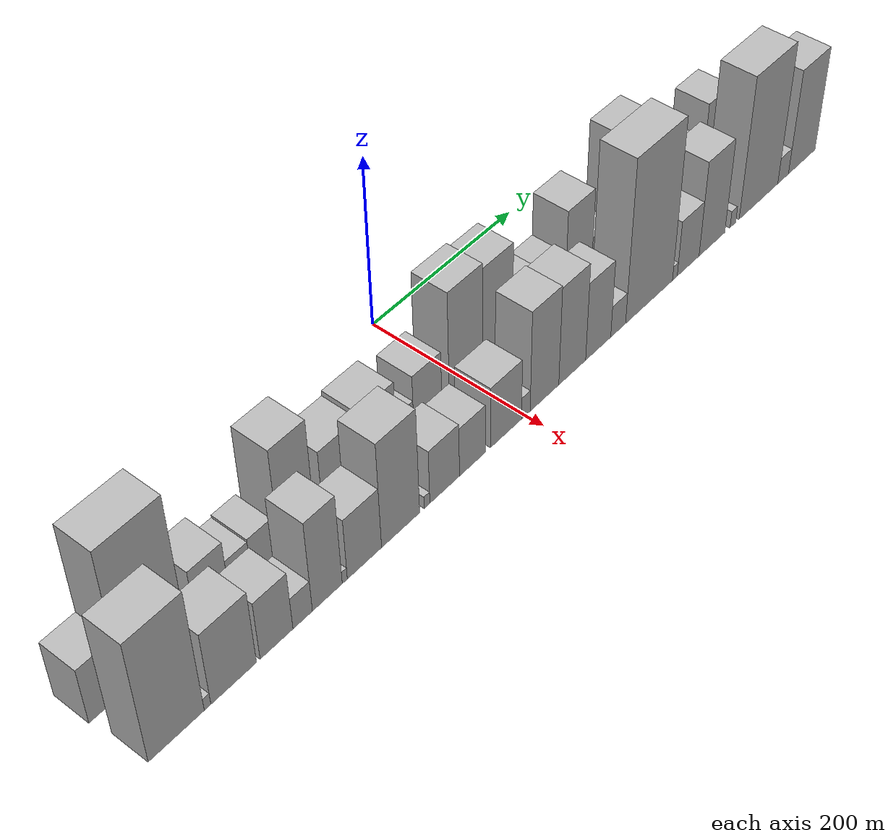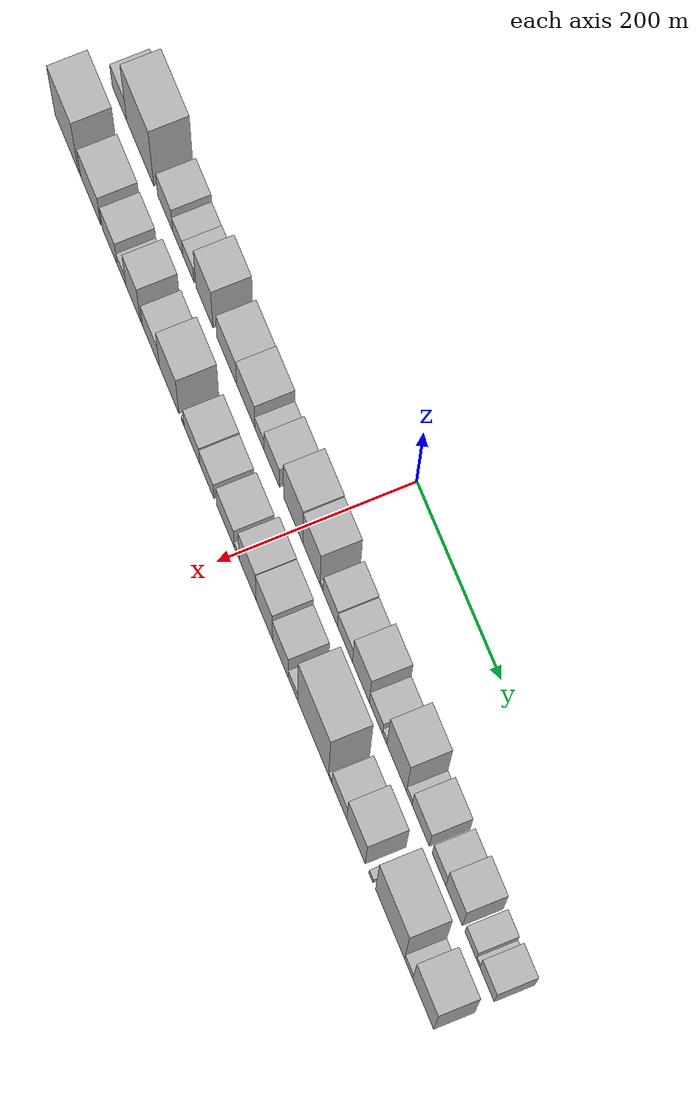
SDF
<sdf version="1.6">
 <world name="default">
  <scene>
   <sky><clouds><speed>12</speed></clouds></sky>
   <ambient>0.4 0.4 0.4 1</ambient>
   <background>0.7 0.7 0.7 1</background>
   <shadows>1</shadows>
  </scene>
  <gravity>0 0 -9.8066</gravity>
  <magnetic_field>6e-06 2.3e-05 -4.2e-05</magnetic_field>
  <physics default="0" name="default_physics" type="ode">
   <ode>
    <solver>
     <type>quick</type>
     <iters>10</iters>
     <sor>1.0</sor>
     <use_dynamic_moi_rescaling>0</use_dynamic_moi_rescaling>
    </solver>
    <constraints>
     <cfm>0</cfm>
     <erp>0.2</erp>
     <contact_max_correcting_vel>100</contact_max_correcting_vel>
     <contact_surface_layer>0.001</contact_surface_layer>
    </constraints>
   </ode>
   <max_step_size>0.004</max_step_size>
   <real_time_factor>1</real_time_factor>
   <real_time_update_rate>250</real_time_update_rate>
  </physics>
  <light name="sun" type="directional">
   <pose>0 0 10 0 0 0</pose>
   <diffuse>0.8 0.8 0.8 1</diffuse>
   <specular>0.2 0.2 0.2 1</specular>
   <attenuation>
    <range>1000</range>
    <constant>0.9</constant>
    <linear>0.01</linear>
    <quadratic>0.001</quadratic>
   </attenuation>
   <direction>-0.5 0.1 -0.9</direction>
  </light>
  <model name="building_1">
   <static>1</static>
   <pose>100.0000 -441.6893 0 0.000000 0.000000 0.000000</pose>
   <link name="link">
    <pose>0 0 34.50 0 0 0</pose>
    <collision name="collision"><geometry><box><size>40.0000 36.6214 69.0000</size></box></geometry></collision>
    <visual name="visual">
     <cast_shadows>0</cast_shadows>
     <geometry><box><size>40.0000 36.6214 69.0000</size></box></geometry>
     <material>
      <script>
       <uri>model://HANNAS_wall/materials/scripts</uri>
       <uri>model://HANNAS_wall/materials/textures</uri>
       <name>vrc/HANNAS_wall</name>
      </script>
     </material>
    </visual>
   </link>
  </model>
  <model name="building_2">
   <static>1</static>
   <pose>100.0000 -389.3046 0 0.000000 0.000000 0.000000</pose>
   <link name="link">
    <pose>0 0 87.00 0 0 0</pose>
    <collision name="collision"><geometry><box><size>40.0000 68.1482 174.0000</size></box></geometry></collision>
    <visual name="visual">
     <cast_shadows>0</cast_shadows>
     <geometry><box><size>40.0000 68.1482 174.0000</size></box></geometry>
     <material>
      <script>
       <uri>model://HANNAS_wall/materials/scripts</uri>
       <uri>model://HANNAS_wall/materials/textures</uri>
       <name>vrc/HANNAS_wall</name>
      </script>
     </material>
    </visual>
   </link>
  </model>
  <model name="building_3">
   <static>1</static>
   <pose>100.0000 -326.4216 0 0.000000 0.000000 0.000000</pose>
   <link name="link">
    <pose>0 0 36.00 0 0 0</pose>
    <collision name="collision"><geometry><box><size>40.0000 37.6178 72.0000</size></box></geometry></collision>
    <visual name="visual">
     <cast_shadows>0</cast_shadows>
     <geometry><box><size>40.0000 37.6178 72.0000</size></box></geometry>
     <material>
      <script>
       <uri>model://HANNAS_wall/materials/scripts</uri>
       <uri>model://HANNAS_wall/materials/textures</uri>
       <name>vrc/HANNAS_wall</name>
      </script>
     </material>
    </visual>
   </link>
  </model>
  <model name="building_4">
   <static>1</static>
   <pose>100.0000 -294.9473 0 0.000000 0.000000 0.000000</pose>
   <link name="link">
    <pose>0 0 24.00 0 0 0</pose>
    <collision name="collision"><geometry><box><size>40.0000 25.3308 48.0000</size></box></geometry></collision>
    <visual name="visual">
     <cast_shadows>0</cast_shadows>
     <geometry><box><size>40.0000 25.3308 48.0000</size></box></geometry>
     <material>
      <script>
       <uri>model://HANNAS_wall/materials/scripts</uri>
       <uri>model://HANNAS_wall/materials/textures</uri>
       <name>vrc/HANNAS_wall</name>
      </script>
     </material>
    </visual>
   </link>
  </model>
  <model name="building_5">
   <static>1</static>
   <pose>100.0000 -268.2786 0 0.000000 0.000000 0.000000</pose>
   <link name="link">
    <pose>0 0 25.50 0 0 0</pose>
    <collision name="collision"><geometry><box><size>40.0000 28.0067 51.0000</size></box></geometry></collision>
    <visual name="visual">
     <cast_shadows>0</cast_shadows>
     <geometry><box><size>40.0000 28.0067 51.0000</size></box></geometry>
     <material>
      <script>
       <uri>model://HANNAS_wall/materials/scripts</uri>
       <uri>model://HANNAS_wall/materials/textures</uri>
       <name>vrc/HANNAS_wall</name>
      </script>
     </material>
    </visual>
   </link>
  </model>
  <model name="building_6">
   <static>1</static>
   <pose>100.0000 -228.2512 0 0.000000 0.000000 0.000000</pose>
   <link name="link">
    <pose>0 0 64.50 0 0 0</pose>
    <collision name="collision"><geometry><box><size>40.0000 42.0481 129.0000</size></box></geometry></collision>
    <visual name="visual">
     <cast_shadows>0</cast_shadows>
     <geometry><box><size>40.0000 42.0481 129.0000</size></box></geometry>
     <material>
      <script>
       <uri>model://HANNAS_wall/materials/scripts</uri>
       <uri>model://HANNAS_wall/materials/textures</uri>
       <name>vrc/HANNAS_wall</name>
      </script>
     </material>
    </visual>
   </link>
  </model>
  <model name="building_7">
   <static>1</static>
   <pose>100.0000 -172.9865 0 0.000000 0.000000 0.000000</pose>
   <link name="link">
    <pose>0 0 40.50 0 0 0</pose>
    <collision name="collision"><geometry><box><size>40.0000 48.4812 81.0000</size></box></geometry></collision>
    <visual name="visual">
     <cast_shadows>0</cast_shadows>
     <geometry><box><size>40.0000 48.4812 81.0000</size></box></geometry>
     <material>
      <script>
       <uri>model://HANNAS_wall/materials/scripts</uri>
       <uri>model://HANNAS_wall/materials/textures</uri>
       <name>vrc/HANNAS_wall</name>
      </script>
     </material>
    </visual>
   </link>
  </model>
  <model name="building_8">
   <static>1</static>
   <pose>100.0000 -126.2339 0 0.000000 0.000000 0.000000</pose>
   <link name="link">
    <pose>0 0 43.50 0 0 0</pose>
    <collision name="collision"><geometry><box><size>40.0000 45.0240 87.0000</size></box></geometry></collision>
    <visual name="visual">
     <cast_shadows>0</cast_shadows>
     <geometry><box><size>40.0000 45.0240 87.0000</size></box></geometry>
     <material>
      <script>
       <uri>model://HANNAS_wall/materials/scripts</uri>
       <uri>model://HANNAS_wall/materials/textures</uri>
       <name>vrc/HANNAS_wall</name>
      </script>
     </material>
    </visual>
   </link>
  </model>
  <model name="building_9">
   <static>1</static>
   <pose>100.0000 -92.3287 0 0.000000 0.000000 0.000000</pose>
   <link name="link">
    <pose>0 0 22.50 0 0 0</pose>
    <collision name="collision"><geometry><box><size>40.0000 22.7864 45.0000</size></box></geometry></collision>
    <visual name="visual">
     <cast_shadows>0</cast_shadows>
     <geometry><box><size>40.0000 22.7864 45.0000</size></box></geometry>
     <material>
      <script>
       <uri>model://HANNAS_wall/materials/scripts</uri>
       <uri>model://HANNAS_wall/materials/textures</uri>
       <name>vrc/HANNAS_wall</name>
      </script>
     </material>
    </visual>
   </link>
  </model>
  <model name="building_10">
   <static>1</static>
   <pose>100.0000 -62.1386 0 0.000000 0.000000 0.000000</pose>
   <link name="link">
    <pose>0 0 37.50 0 0 0</pose>
    <collision name="collision"><geometry><box><size>40.0000 37.5937 75.0000</size></box></geometry></collision>
    <visual name="visual">
     <cast_shadows>0</cast_shadows>
     <geometry><box><size>40.0000 37.5937 75.0000</size></box></geometry>
     <material>
      <script>
       <uri>model://HANNAS_wall/materials/scripts</uri>
       <uri>model://HANNAS_wall/materials/textures</uri>
       <name>vrc/HANNAS_wall</name>
      </script>
     </material>
    </visual>
   </link>
  </model>
  <model name="building_11">
   <static>1</static>
   <pose>100.0000 -10.0357 0 0.000000 0.000000 0.000000</pose>
   <link name="link">
    <pose>0 0 69.00 0 0 0</pose>
    <collision name="collision"><geometry><box><size>40.0000 46.6120 138.0000</size></box></geometry></collision>
    <visual name="visual">
     <cast_shadows>0</cast_shadows>
     <geometry><box><size>40.0000 46.6120 138.0000</size></box></geometry>
     <material>
      <script>
       <uri>model://HANNAS_wall/materials/scripts</uri>
       <uri>model://HANNAS_wall/materials/textures</uri>
       <name>vrc/HANNAS_wall</name>
      </script>
     </material>
    </visual>
   </link>
  </model>
  <model name="building_12">
   <static>1</static>
   <pose>100.0000 34.3279 0 0.000000 0.000000 0.000000</pose>
   <link name="link">
    <pose>0 0 66.00 0 0 0</pose>
    <collision name="collision"><geometry><box><size>40.0000 42.1152 132.0000</size></box></geometry></collision>
    <visual name="visual">
     <cast_shadows>0</cast_shadows>
     <geometry><box><size>40.0000 42.1152 132.0000</size></box></geometry>
     <material>
      <script>
       <uri>model://HANNAS_wall/materials/scripts</uri>
       <uri>model://HANNAS_wall/materials/textures</uri>
       <name>vrc/HANNAS_wall</name>
      </script>
     </material>
    </visual>
   </link>
  </model>
  <model name="building_13">
   <static>1</static>
   <pose>100.0000 59.0370 0 0.000000 0.000000 0.000000</pose>
   <link name="link">
    <pose>0 0 9.00 0 0 0</pose>
    <collision name="collision"><geometry><box><size>40.0000 7.3032 18.0000</size></box></geometry></collision>
    <visual name="visual">
     <cast_shadows>0</cast_shadows>
     <geometry><box><size>40.0000 7.3032 18.0000</size></box></geometry>
     <material>
      <script>
       <uri>model://HANNAS_wall/materials/scripts</uri>
       <uri>model://HANNAS_wall/materials/textures</uri>
       <name>vrc/HANNAS_wall</name>
      </script>
     </material>
    </visual>
   </link>
  </model>
  <model name="building_14">
   <static>1</static>
   <pose>100.0000 80.1584 0 0.000000 0.000000 0.000000</pose>
   <link name="link">
    <pose>0 0 34.50 0 0 0</pose>
    <collision name="collision"><geometry><box><size>40.0000 34.9397 69.0000</size></box></geometry></collision>
    <visual name="visual">
     <cast_shadows>0</cast_shadows>
     <geometry><box><size>40.0000 34.9397 69.0000</size></box></geometry>
     <material>
      <script>
       <uri>model://HANNAS_wall/materials/scripts</uri>
       <uri>model://HANNAS_wall/materials/textures</uri>
       <name>vrc/HANNAS_wall</name>
      </script>
     </material>
    </visual>
   </link>
  </model>
  <model name="building_15">
   <static>1</static>
   <pose>100.0000 115.6717 0 0.000000 0.000000 0.000000</pose>
   <link name="link">
    <pose>0 0 31.50 0 0 0</pose>
    <collision name="collision"><geometry><box><size>40.0000 36.0867 63.0000</size></box></geometry></collision>
    <visual name="visual">
     <cast_shadows>0</cast_shadows>
     <geometry><box><size>40.0000 36.0867 63.0000</size></box></geometry>
     <material>
      <script>
       <uri>model://HANNAS_wall/materials/scripts</uri>
       <uri>model://HANNAS_wall/materials/textures</uri>
       <name>vrc/HANNAS_wall</name>
      </script>
     </material>
    </visual>
   </link>
  </model>
  <model name="building_16">
   <static>1</static>
   <pose>100.0000 153.8716 0 0.000000 0.000000 0.000000</pose>
   <link name="link">
    <pose>0 0 57.00 0 0 0</pose>
    <collision name="collision"><geometry><box><size>40.0000 40.3131 114.0000</size></box></geometry></collision>
    <visual name="visual">
     <cast_shadows>0</cast_shadows>
     <geometry><box><size>40.0000 40.3131 114.0000</size></box></geometry>
     <material>
      <script>
       <uri>model://HANNAS_wall/materials/scripts</uri>
       <uri>model://HANNAS_wall/materials/textures</uri>
       <name>vrc/HANNAS_wall</name>
      </script>
     </material>
    </visual>
   </link>
  </model>
  <model name="building_17">
   <static>1</static>
   <pose>100.0000 189.6926 0 0.000000 0.000000 0.000000</pose>
   <link name="link">
    <pose>0 0 27.00 0 0 0</pose>
    <collision name="collision"><geometry><box><size>40.0000 31.3289 54.0000</size></box></geometry></collision>
    <visual name="visual">
     <cast_shadows>0</cast_shadows>
     <geometry><box><size>40.0000 31.3289 54.0000</size></box></geometry>
     <material>
      <script>
       <uri>model://HANNAS_wall/materials/scripts</uri>
       <uri>model://HANNAS_wall/materials/textures</uri>
       <name>vrc/HANNAS_wall</name>
      </script>
     </material>
    </visual>
   </link>
  </model>
  <model name="building_18">
   <static>1</static>
   <pose>100.0000 210.8016 0 0.000000 0.000000 0.000000</pose>
   <link name="link">
    <pose>0 0 13.50 0 0 0</pose>
    <collision name="collision"><geometry><box><size>40.0000 10.8892 27.0000</size></box></geometry></collision>
    <visual name="visual">
     <cast_shadows>0</cast_shadows>
     <geometry><box><size>40.0000 10.8892 27.0000</size></box></geometry>
     <material>
      <script>
       <uri>model://HANNAS_wall/materials/scripts</uri>
       <uri>model://HANNAS_wall/materials/textures</uri>
       <name>vrc/HANNAS_wall</name>
      </script>
     </material>
    </visual>
   </link>
  </model>
  <model name="building_19">
   <static>1</static>
   <pose>100.0000 239.4249 0 0.000000 0.000000 0.000000</pose>
   <link name="link">
    <pose>0 0 73.50 0 0 0</pose>
    <collision name="collision"><geometry><box><size>40.0000 46.3573 147.0000</size></box></geometry></collision>
    <visual name="visual">
     <cast_shadows>0</cast_shadows>
     <geometry><box><size>40.0000 46.3573 147.0000</size></box></geometry>
     <material>
      <script>
       <uri>model://HANNAS_wall/materials/scripts</uri>
       <uri>model://HANNAS_wall/materials/textures</uri>
       <name>vrc/HANNAS_wall</name>
      </script>
     </material>
    </visual>
   </link>
  </model>
  <model name="building_20">
   <static>1</static>
   <pose>100.0000 269.3526 0 0.000000 0.000000 0.000000</pose>
   <link name="link">
    <pose>0 0 13.50 0 0 0</pose>
    <collision name="collision"><geometry><box><size>40.0000 13.4980 27.0000</size></box></geometry></collision>
    <visual name="visual">
     <cast_shadows>0</cast_shadows>
     <geometry><box><size>40.0000 13.4980 27.0000</size></box></geometry>
     <material>
      <script>
       <uri>model://HANNAS_wall/materials/scripts</uri>
       <uri>model://HANNAS_wall/materials/textures</uri>
       <name>vrc/HANNAS_wall</name>
      </script>
     </material>
    </visual>
   </link>
  </model>
  <model name="building_21">
   <static>1</static>
   <pose>100.0000 296.5154 0 0.000000 0.000000 0.000000</pose>
   <link name="link">
    <pose>0 0 36.00 0 0 0</pose>
    <collision name="collision"><geometry><box><size>40.0000 40.8278 72.0000</size></box></geometry></collision>
    <visual name="visual">
     <cast_shadows>0</cast_shadows>
     <geometry><box><size>40.0000 40.8278 72.0000</size></box></geometry>
     <material>
      <script>
       <uri>model://HANNAS_wall/materials/scripts</uri>
       <uri>model://HANNAS_wall/materials/textures</uri>
       <name>vrc/HANNAS_wall</name>
      </script>
     </material>
    </visual>
   </link>
  </model>
  <model name="building_22">
   <static>1</static>
   <pose>100.0000 340.0152 0 0.000000 0.000000 0.000000</pose>
   <link name="link">
    <pose>0 0 28.50 0 0 0</pose>
    <collision name="collision"><geometry><box><size>40.0000 32.1717 57.0000</size></box></geometry></collision>
    <visual name="visual">
     <cast_shadows>0</cast_shadows>
     <geometry><box><size>40.0000 32.1717 57.0000</size></box></geometry>
     <material>
      <script>
       <uri>model://HANNAS_wall/materials/scripts</uri>
       <uri>model://HANNAS_wall/materials/textures</uri>
       <name>vrc/HANNAS_wall</name>
      </script>
     </material>
    </visual>
   </link>
  </model>
  <model name="building_23">
   <static>1</static>
   <pose>100.0000 375.5228 0 0.000000 0.000000 0.000000</pose>
   <link name="link">
    <pose>0 0 49.50 0 0 0</pose>
    <collision name="collision"><geometry><box><size>40.0000 38.8435 99.0000</size></box></geometry></collision>
    <visual name="visual">
     <cast_shadows>0</cast_shadows>
     <geometry><box><size>40.0000 38.8435 99.0000</size></box></geometry>
     <material>
      <script>
       <uri>model://HANNAS_wall/materials/scripts</uri>
       <uri>model://HANNAS_wall/materials/textures</uri>
       <name>vrc/HANNAS_wall</name>
      </script>
     </material>
    </visual>
   </link>
  </model>
  <model name="building_24">
   <static>1</static>
   <pose>100.0000 414.2215 0 0.000000 0.000000 0.000000</pose>
   <link name="link">
    <pose>0 0 22.50 0 0 0</pose>
    <collision name="collision"><geometry><box><size>40.0000 26.5538 45.0000</size></box></geometry></collision>
    <visual name="visual">
     <cast_shadows>0</cast_shadows>
     <geometry><box><size>40.0000 26.5538 45.0000</size></box></geometry>
     <material>
      <script>
       <uri>model://HANNAS_wall/materials/scripts</uri>
       <uri>model://HANNAS_wall/materials/textures</uri>
       <name>vrc/HANNAS_wall</name>
      </script>
     </material>
    </visual>
   </link>
  </model>
  <model name="building_25">
   <static>1</static>
   <pose>100.0000 431.5704 0 0.000000 0.000000 0.000000</pose>
   <link name="link">
    <pose>0 0 9.00 0 0 0</pose>
    <collision name="collision"><geometry><box><size>40.0000 8.1441 18.0000</size></box></geometry></collision>
    <visual name="visual">
     <cast_shadows>0</cast_shadows>
     <geometry><box><size>40.0000 8.1441 18.0000</size></box></geometry>
     <material>
      <script>
       <uri>model://HANNAS_wall/materials/scripts</uri>
       <uri>model://HANNAS_wall/materials/textures</uri>
       <name>vrc/HANNAS_wall</name>
      </script>
     </material>
    </visual>
   </link>
  </model>
  <model name="building_26">
   <static>1</static>
   <pose>100.0000 452.4295 0 0.000000 0.000000 0.000000</pose>
   <link name="link">
    <pose>0 0 31.50 0 0 0</pose>
    <collision name="collision"><geometry><box><size>40.0000 33.5740 63.0000</size></box></geometry></collision>
    <visual name="visual">
     <cast_shadows>0</cast_shadows>
     <geometry><box><size>40.0000 33.5740 63.0000</size></box></geometry>
     <material>
      <script>
       <uri>model://HANNAS_wall/materials/scripts</uri>
       <uri>model://HANNAS_wall/materials/textures</uri>
       <name>vrc/HANNAS_wall</name>
      </script>
     </material>
    </visual>
   </link>
  </model>
  <model name="building_27">
   <static>1</static>
   <pose>160.0000 -425.5056 0 0.000000 0.000000 0.000000</pose>
   <link name="link">
    <pose>0 0 75.00 0 0 0</pose>
    <collision name="collision"><geometry><box><size>40.0000 58.9888 150.0000</size></box></geometry></collision>
    <visual name="visual">
     <cast_shadows>0</cast_shadows>
     <geometry><box><size>40.0000 58.9888 150.0000</size></box></geometry>
     <material>
      <script>
       <uri>model://HANNAS_wall/materials/scripts</uri>
       <uri>model://HANNAS_wall/materials/textures</uri>
       <name>vrc/HANNAS_wall</name>
      </script>
     </material>
    </visual>
   </link>
  </model>
  <model name="building_28">
   <static>1</static>
   <pose>160.0000 -392.4713 0 0.000000 0.000000 0.000000</pose>
   <link name="link">
    <pose>0 0 7.50 0 0 0</pose>
    <collision name="collision"><geometry><box><size>40.0000 7.0799 15.0000</size></box></geometry></collision>
    <visual name="visual">
     <cast_shadows>0</cast_shadows>
     <geometry><box><size>40.0000 7.0799 15.0000</size></box></geometry>
     <material>
      <script>
       <uri>model://HANNAS_wall/materials/scripts</uri>
       <uri>model://HANNAS_wall/materials/textures</uri>
       <name>vrc/HANNAS_wall</name>
      </script>
     </material>
    </visual>
   </link>
  </model>
  <model name="building_29">
   <static>1</static>
   <pose>160.0000 -363.8579 0 0.000000 0.000000 0.000000</pose>
   <link name="link">
    <pose>0 0 45.00 0 0 0</pose>
    <collision name="collision"><geometry><box><size>40.0000 50.1468 90.0000</size></box></geometry></collision>
    <visual name="visual">
     <cast_shadows>0</cast_shadows>
     <geometry><box><size>40.0000 50.1468 90.0000</size></box></geometry>
     <material>
      <script>
       <uri>model://HANNAS_wall/materials/scripts</uri>
       <uri>model://HANNAS_wall/materials/textures</uri>
       <name>vrc/HANNAS_wall</name>
      </script>
     </material>
    </visual>
   </link>
  </model>
  <model name="building_30">
   <static>1</static>
   <pose>160.0000 -316.0958 0 0.000000 0.000000 0.000000</pose>
   <link name="link">
    <pose>0 0 36.00 0 0 0</pose>
    <collision name="collision"><geometry><box><size>40.0000 37.3774 72.0000</size></box></geometry></collision>
    <visual name="visual">
     <cast_shadows>0</cast_shadows>
     <geometry><box><size>40.0000 37.3774 72.0000</size></box></geometry>
     <material>
      <script>
       <uri>model://HANNAS_wall/materials/scripts</uri>
       <uri>model://HANNAS_wall/materials/textures</uri>
       <name>vrc/HANNAS_wall</name>
      </script>
     </material>
    </visual>
   </link>
  </model>
  <model name="building_31">
   <static>1</static>
   <pose>160.0000 -286.0995 0 0.000000 0.000000 0.000000</pose>
   <link name="link">
    <pose>0 0 19.50 0 0 0</pose>
    <collision name="collision"><geometry><box><size>40.0000 22.6153 39.0000</size></box></geometry></collision>
    <visual name="visual">
     <cast_shadows>0</cast_shadows>
     <geometry><box><size>40.0000 22.6153 39.0000</size></box></geometry>
     <material>
      <script>
       <uri>model://HANNAS_wall/materials/scripts</uri>
       <uri>model://HANNAS_wall/materials/textures</uri>
       <name>vrc/HANNAS_wall</name>
      </script>
     </material>
    </visual>
   </link>
  </model>
  <model name="building_32">
   <static>1</static>
   <pose>160.0000 -257.0521 0 0.000000 0.000000 0.000000</pose>
   <link name="link">
    <pose>0 0 55.50 0 0 0</pose>
    <collision name="collision"><geometry><box><size>40.0000 35.4796 111.0000</size></box></geometry></collision>
    <visual name="visual">
     <cast_shadows>0</cast_shadows>
     <geometry><box><size>40.0000 35.4796 111.0000</size></box></geometry>
     <material>
      <script>
       <uri>model://HANNAS_wall/materials/scripts</uri>
       <uri>model://HANNAS_wall/materials/textures</uri>
       <name>vrc/HANNAS_wall</name>
      </script>
     </material>
    </visual>
   </link>
  </model>
  <model name="building_33">
   <static>1</static>
   <pose>160.0000 -236.2704 0 0.000000 0.000000 0.000000</pose>
   <link name="link">
    <pose>0 0 7.50 0 0 0</pose>
    <collision name="collision"><geometry><box><size>40.0000 6.0837 15.0000</size></box></geometry></collision>
    <visual name="visual">
     <cast_shadows>0</cast_shadows>
     <geometry><box><size>40.0000 6.0837 15.0000</size></box></geometry>
     <material>
      <script>
       <uri>model://HANNAS_wall/materials/scripts</uri>
       <uri>model://HANNAS_wall/materials/textures</uri>
       <name>vrc/HANNAS_wall</name>
      </script>
     </material>
    </visual>
   </link>
  </model>
  <model name="building_34">
   <static>1</static>
   <pose>160.0000 -212.2341 0 0.000000 0.000000 0.000000</pose>
   <link name="link">
    <pose>0 0 37.50 0 0 0</pose>
    <collision name="collision"><geometry><box><size>40.0000 41.9890 75.0000</size></box></geometry></collision>
    <visual name="visual">
     <cast_shadows>0</cast_shadows>
     <geometry><box><size>40.0000 41.9890 75.0000</size></box></geometry>
     <material>
      <script>
       <uri>model://HANNAS_wall/materials/scripts</uri>
       <uri>model://HANNAS_wall/materials/textures</uri>
       <name>vrc/HANNAS_wall</name>
      </script>
     </material>
    </visual>
   </link>
  </model>
  <model name="building_35">
   <static>1</static>
   <pose>160.0000 -167.2001 0 0.000000 0.000000 0.000000</pose>
   <link name="link">
    <pose>0 0 64.50 0 0 0</pose>
    <collision name="collision"><geometry><box><size>40.0000 48.0790 129.0000</size></box></geometry></collision>
    <visual name="visual">
     <cast_shadows>0</cast_shadows>
     <geometry><box><size>40.0000 48.0790 129.0000</size></box></geometry>
     <material>
      <script>
       <uri>model://HANNAS_wall/materials/scripts</uri>
       <uri>model://HANNAS_wall/materials/textures</uri>
       <name>vrc/HANNAS_wall</name>
      </script>
     </material>
    </visual>
   </link>
  </model>
  <model name="building_36">
   <static>1</static>
   <pose>160.0000 -133.5755 0 0.000000 0.000000 0.000000</pose>
   <link name="link">
    <pose>0 0 7.50 0 0 0</pose>
    <collision name="collision"><geometry><box><size>40.0000 7.1702 15.0000</size></box></geometry></collision>
    <visual name="visual">
     <cast_shadows>0</cast_shadows>
     <geometry><box><size>40.0000 7.1702 15.0000</size></box></geometry>
     <material>
      <script>
       <uri>model://HANNAS_wall/materials/scripts</uri>
       <uri>model://HANNAS_wall/materials/textures</uri>
       <name>vrc/HANNAS_wall</name>
      </script>
     </material>
    </visual>
   </link>
  </model>
  <model name="building_37">
   <static>1</static>
   <pose>160.0000 -110.5118 0 0.000000 0.000000 0.000000</pose>
   <link name="link">
    <pose>0 0 33.00 0 0 0</pose>
    <collision name="collision"><geometry><box><size>40.0000 38.9571 66.0000</size></box></geometry></collision>
    <visual name="visual">
     <cast_shadows>0</cast_shadows>
     <geometry><box><size>40.0000 38.9571 66.0000</size></box></geometry>
     <material>
      <script>
       <uri>model://HANNAS_wall/materials/scripts</uri>
       <uri>model://HANNAS_wall/materials/textures</uri>
       <name>vrc/HANNAS_wall</name>
      </script>
     </material>
    </visual>
   </link>
  </model>
  <model name="building_38">
   <static>1</static>
   <pose>160.0000 -73.5419 0 0.000000 0.000000 0.000000</pose>
   <link name="link">
    <pose>0 0 30.00 0 0 0</pose>
    <collision name="collision"><geometry><box><size>40.0000 34.9828 60.0000</size></box></geometry></collision>
    <visual name="visual">
     <cast_shadows>0</cast_shadows>
     <geometry><box><size>40.0000 34.9828 60.0000</size></box></geometry>
     <material>
      <script>
       <uri>model://HANNAS_wall/materials/scripts</uri>
       <uri>model://HANNAS_wall/materials/textures</uri>
       <name>vrc/HANNAS_wall</name>
      </script>
     </material>
    </visual>
   </link>
  </model>
  <model name="building_39">
   <static>1</static>
   <pose>160.0000 -27.6429 0 0.000000 0.000000 0.000000</pose>
   <link name="link">
    <pose>0 0 37.50 0 0 0</pose>
    <collision name="collision"><geometry><box><size>40.0000 42.8151 75.0000</size></box></geometry></collision>
    <visual name="visual">
     <cast_shadows>0</cast_shadows>
     <geometry><box><size>40.0000 42.8151 75.0000</size></box></geometry>
     <material>
      <script>
       <uri>model://HANNAS_wall/materials/scripts</uri>
       <uri>model://HANNAS_wall/materials/textures</uri>
       <name>vrc/HANNAS_wall</name>
      </script>
     </material>
    </visual>
   </link>
  </model>
  <model name="building_40">
   <static>1</static>
   <pose>160.0000 -0.0676 0 0.000000 0.000000 0.000000</pose>
   <link name="link">
    <pose>0 0 13.50 0 0 0</pose>
    <collision name="collision"><geometry><box><size>40.0000 12.3355 27.0000</size></box></geometry></collision>
    <visual name="visual">
     <cast_shadows>0</cast_shadows>
     <geometry><box><size>40.0000 12.3355 27.0000</size></box></geometry>
     <material>
      <script>
       <uri>model://HANNAS_wall/materials/scripts</uri>
       <uri>model://HANNAS_wall/materials/textures</uri>
       <name>vrc/HANNAS_wall</name>
      </script>
     </material>
    </visual>
   </link>
  </model>
  <model name="building_41">
   <static>1</static>
   <pose>160.0000 26.7017 0 0.000000 0.000000 0.000000</pose>
   <link name="link">
    <pose>0 0 61.50 0 0 0</pose>
    <collision name="collision"><geometry><box><size>40.0000 41.2031 123.0000</size></box></geometry></collision>
    <visual name="visual">
     <cast_shadows>0</cast_shadows>
     <geometry><box><size>40.0000 41.2031 123.0000</size></box></geometry>
     <material>
      <script>
       <uri>model://HANNAS_wall/materials/scripts</uri>
       <uri>model://HANNAS_wall/materials/textures</uri>
       <name>vrc/HANNAS_wall</name>
      </script>
     </material>
    </visual>
   </link>
  </model>
  <model name="building_42">
   <static>1</static>
   <pose>160.0000 67.1259 0 0.000000 0.000000 0.000000</pose>
   <link name="link">
    <pose>0 0 60.00 0 0 0</pose>
    <collision name="collision"><geometry><box><size>40.0000 39.6454 120.0000</size></box></geometry></collision>
    <visual name="visual">
     <cast_shadows>0</cast_shadows>
     <geometry><box><size>40.0000 39.6454 120.0000</size></box></geometry>
     <material>
      <script>
       <uri>model://HANNAS_wall/materials/scripts</uri>
       <uri>model://HANNAS_wall/materials/textures</uri>
       <name>vrc/HANNAS_wall</name>
      </script>
     </material>
    </visual>
   </link>
  </model>
  <model name="building_43">
   <static>1</static>
   <pose>160.0000 105.9053 0 0.000000 0.000000 0.000000</pose>
   <link name="link">
    <pose>0 0 48.00 0 0 0</pose>
    <collision name="collision"><geometry><box><size>40.0000 37.9134 96.0000</size></box></geometry></collision>
    <visual name="visual">
     <cast_shadows>0</cast_shadows>
     <geometry><box><size>40.0000 37.9134 96.0000</size></box></geometry>
     <material>
      <script>
       <uri>model://HANNAS_wall/materials/scripts</uri>
       <uri>model://HANNAS_wall/materials/textures</uri>
       <name>vrc/HANNAS_wall</name>
      </script>
     </material>
    </visual>
   </link>
  </model>
  <model name="building_44">
   <static>1</static>
   <pose>160.0000 136.3517 0 0.000000 0.000000 0.000000</pose>
   <link name="link">
    <pose>0 0 19.50 0 0 0</pose>
    <collision name="collision"><geometry><box><size>40.0000 22.9793 39.0000</size></box></geometry></collision>
    <visual name="visual">
     <cast_shadows>0</cast_shadows>
     <geometry><box><size>40.0000 22.9793 39.0000</size></box></geometry>
     <material>
      <script>
       <uri>model://HANNAS_wall/materials/scripts</uri>
       <uri>model://HANNAS_wall/materials/textures</uri>
       <name>vrc/HANNAS_wall</name>
      </script>
     </material>
    </visual>
   </link>
  </model>
  <model name="building_45">
   <static>1</static>
   <pose>160.0000 185.0924 0 0.000000 0.000000 0.000000</pose>
   <link name="link">
    <pose>0 0 99.00 0 0 0</pose>
    <collision name="collision"><geometry><box><size>40.0000 74.5020 198.0000</size></box></geometry></collision>
    <visual name="visual">
     <cast_shadows>0</cast_shadows>
     <geometry><box><size>40.0000 74.5020 198.0000</size></box></geometry>
     <material>
      <script>
       <uri>model://HANNAS_wall/materials/scripts</uri>
       <uri>model://HANNAS_wall/materials/textures</uri>
       <name>vrc/HANNAS_wall</name>
      </script>
     </material>
    </visual>
   </link>
  </model>
  <model name="building_46">
   <static>1</static>
   <pose>160.0000 226.2296 0 0.000000 0.000000 0.000000</pose>
   <link name="link">
    <pose>0 0 9.00 0 0 0</pose>
    <collision name="collision"><geometry><box><size>40.0000 7.7724 18.0000</size></box></geometry></collision>
    <visual name="visual">
     <cast_shadows>0</cast_shadows>
     <geometry><box><size>40.0000 7.7724 18.0000</size></box></geometry>
     <material>
      <script>
       <uri>model://HANNAS_wall/materials/scripts</uri>
       <uri>model://HANNAS_wall/materials/textures</uri>
       <name>vrc/HANNAS_wall</name>
      </script>
     </material>
    </visual>
   </link>
  </model>
  <model name="building_47">
   <static>1</static>
   <pose>160.0000 248.1094 0 0.000000 0.000000 0.000000</pose>
   <link name="link">
    <pose>0 0 34.50 0 0 0</pose>
    <collision name="collision"><geometry><box><size>40.0000 35.9873 69.0000</size></box></geometry></collision>
    <visual name="visual">
     <cast_shadows>0</cast_shadows>
     <geometry><box><size>40.0000 35.9873 69.0000</size></box></geometry>
     <material>
      <script>
       <uri>model://HANNAS_wall/materials/scripts</uri>
       <uri>model://HANNAS_wall/materials/textures</uri>
       <name>vrc/HANNAS_wall</name>
      </script>
     </material>
    </visual>
   </link>
  </model>
  <model name="building_48">
   <static>1</static>
   <pose>160.0000 287.9173 0 0.000000 0.000000 0.000000</pose>
   <link name="link">
    <pose>0 0 58.50 0 0 0</pose>
    <collision name="collision"><geometry><box><size>40.0000 43.6284 117.0000</size></box></geometry></collision>
    <visual name="visual">
     <cast_shadows>0</cast_shadows>
     <geometry><box><size>40.0000 43.6284 117.0000</size></box></geometry>
     <material>
      <script>
       <uri>model://HANNAS_wall/materials/scripts</uri>
       <uri>model://HANNAS_wall/materials/textures</uri>
       <name>vrc/HANNAS_wall</name>
      </script>
     </material>
    </visual>
   </link>
  </model>
  <model name="building_49">
   <static>1</static>
   <pose>160.0000 323.6084 0 0.000000 0.000000 0.000000</pose>
   <link name="link">
    <pose>0 0 10.50 0 0 0</pose>
    <collision name="collision"><geometry><box><size>40.0000 9.7539 21.0000</size></box></geometry></collision>
    <visual name="visual">
     <cast_shadows>0</cast_shadows>
     <geometry><box><size>40.0000 9.7539 21.0000</size></box></geometry>
     <material>
      <script>
       <uri>model://HANNAS_wall/materials/scripts</uri>
       <uri>model://HANNAS_wall/materials/textures</uri>
       <name>vrc/HANNAS_wall</name>
      </script>
     </material>
    </visual>
   </link>
  </model>
  <model name="building_50">
   <static>1</static>
   <pose>160.0000 368.7352 0 0.000000 0.000000 0.000000</pose>
   <link name="link">
    <pose>0 0 87.00 0 0 0</pose>
    <collision name="collision"><geometry><box><size>40.0000 68.4997 174.0000</size></box></geometry></collision>
    <visual name="visual">
     <cast_shadows>0</cast_shadows>
     <geometry><box><size>40.0000 68.4997 174.0000</size></box></geometry>
     <material>
      <script>
       <uri>model://HANNAS_wall/materials/scripts</uri>
       <uri>model://HANNAS_wall/materials/textures</uri>
       <name>vrc/HANNAS_wall</name>
      </script>
     </material>
    </visual>
   </link>
  </model>
  <model name="building_51">
   <static>1</static>
   <pose>160.0000 412.6827 0 0.000000 0.000000 0.000000</pose>
   <link name="link">
    <pose>0 0 16.50 0 0 0</pose>
    <collision name="collision"><geometry><box><size>40.0000 19.3952 33.0000</size></box></geometry></collision>
    <visual name="visual">
     <cast_shadows>0</cast_shadows>
     <geometry><box><size>40.0000 19.3952 33.0000</size></box></geometry>
     <material>
      <script>
       <uri>model://HANNAS_wall/materials/scripts</uri>
       <uri>model://HANNAS_wall/materials/textures</uri>
       <name>vrc/HANNAS_wall</name>
      </script>
     </material>
    </visual>
   </link>
  </model>
  <model name="building_52">
   <static>1</static>
   <pose>160.0000 446.9634 0 0.000000 0.000000 0.000000</pose>
   <link name="link">
    <pose>0 0 64.50 0 0 0</pose>
    <collision name="collision"><geometry><box><size>40.0000 49.1662 129.0000</size></box></geometry></collision>
    <visual name="visual">
     <cast_shadows>0</cast_shadows>
     <geometry><box><size>40.0000 49.1662 129.0000</size></box></geometry>
     <material>
      <script>
       <uri>model://HANNAS_wall/materials/scripts</uri>
       <uri>model://HANNAS_wall/materials/textures</uri>
       <name>vrc/HANNAS_wall</name>
      </script>
     </material>
    </visual>
   </link>
  </model>
 </world>
</sdf>
